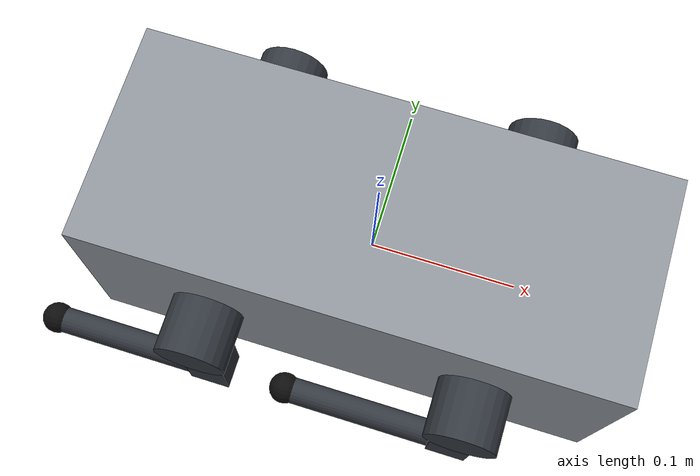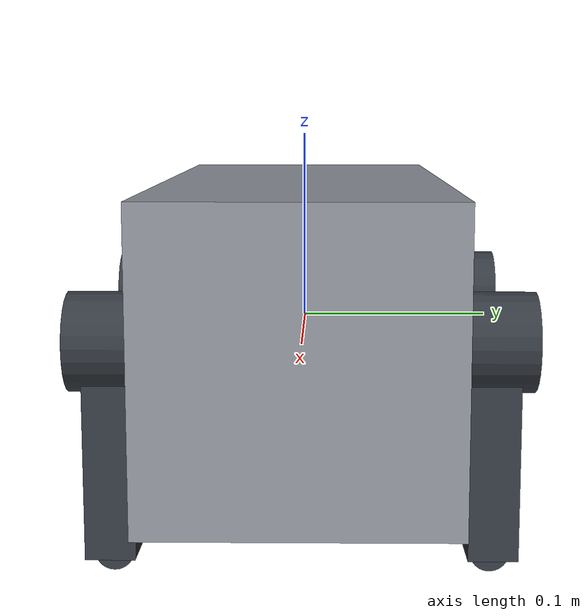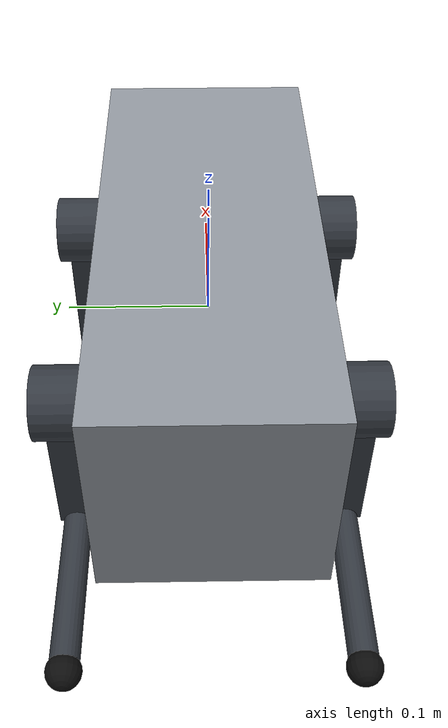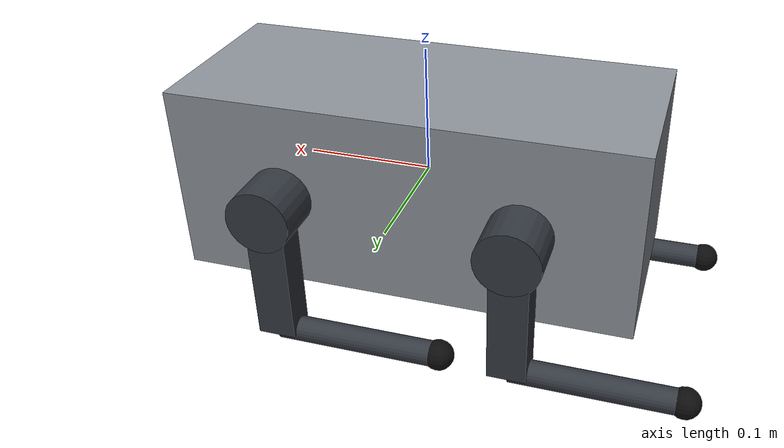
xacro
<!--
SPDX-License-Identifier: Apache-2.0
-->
<?xml version="1.0"?>
<robot name="home_guardian" xmlns:xacro="http://www.ros.org/wiki/xacro">

  <xacro:property name="deg" value="${pi / 180.0}"/>

  <xacro:property name="body_length" value="0.360"/>
  <xacro:property name="body_width" value="0.150"/>
  <xacro:property name="body_height" value="0.150"/>
  <xacro:property name="hip_x" value="0.093"/>
  <xacro:property name="hip_y" value="0.095"/>
  <xacro:property name="femur_length" value="0.108"/>
  <xacro:property name="tibia_length" value="0.130"/>

  <xacro:property name="hip_lower" value="${-45 * deg}"/>
  <xacro:property name="hip_upper" value="${100 * deg}"/>
  <xacro:property name="knee_lower" value="${30 * deg}"/>
  <xacro:property name="knee_upper" value="${150 * deg}"/>
  <!-- Placeholders until the servos are chosen. -->
  <xacro:property name="joint_effort" value="10.0"/>
  <xacro:property name="joint_velocity" value="6.0"/>

  <material name="body_grey"><color rgba="0.55 0.57 0.60 1.0"/></material>
  <material name="leg_dark"><color rgba="0.20 0.22 0.25 1.0"/></material>
  <material name="foot_black"><color rgba="0.05 0.05 0.05 1.0"/></material>

  <link name="base_link">
    <visual>
      <geometry><box size="${body_length} ${body_width} ${body_height}"/></geometry>
      <material name="body_grey"/>
    </visual>
    <collision>
      <geometry><box size="${body_length} ${body_width} ${body_height}"/></geometry>
    </collision>
  </link>

  <xacro:macro name="leg" params="prefix x y">
    <joint name="${prefix}_hip_joint" type="revolute">
      <parent link="base_link"/>
      <child link="${prefix}_femur"/>
      <origin xyz="${x} ${y} 0" rpy="0 0 0"/>
      <axis xyz="0 -1 0"/>
      <limit lower="${hip_lower}" upper="${hip_upper}" effort="${joint_effort}"
             velocity="${joint_velocity}"/>
    </joint>

    <link name="${prefix}_femur">
      <!-- Hip actuator, along the pitch axis. -->
      <visual>
        <origin xyz="0 0 0" rpy="${pi / 2} 0 0"/>
        <geometry><cylinder radius="0.025" length="0.040"/></geometry>
        <material name="leg_dark"/>
      </visual>
      <visual>
        <origin xyz="0 0 ${-femur_length / 2}" rpy="0 0 0"/>
        <geometry><box size="0.030 0.025 ${femur_length}"/></geometry>
        <material name="leg_dark"/>
      </visual>
      <collision>
        <origin xyz="0 0 ${-femur_length / 2}" rpy="0 0 0"/>
        <geometry><box size="0.030 0.025 ${femur_length}"/></geometry>
      </collision>
    </link>

    <joint name="${prefix}_knee_joint" type="revolute">
      <parent link="${prefix}_femur"/>
      <child link="${prefix}_tibia"/>
      <origin xyz="0 0 ${-femur_length}" rpy="0 ${pi} 0"/>
      <axis xyz="0 -1 0"/>
      <limit lower="${knee_lower}" upper="${knee_upper}" effort="${joint_effort}"
             velocity="${joint_velocity}"/>
    </joint>

    <link name="${prefix}_tibia">
      <visual>
        <origin xyz="0 0 ${-tibia_length / 2}" rpy="0 0 0"/>
        <geometry><cylinder radius="0.010" length="${tibia_length}"/></geometry>
        <material name="leg_dark"/>
      </visual>
      <collision>
        <origin xyz="0 0 ${-tibia_length / 2}" rpy="0 0 0"/>
        <geometry><cylinder radius="0.010" length="${tibia_length}"/></geometry>
      </collision>
    </link>

    <!-- Foot contact point at the tibia tip. -->
    <joint name="${prefix}_foot_joint" type="fixed">
      <parent link="${prefix}_tibia"/>
      <child link="${prefix}_foot"/>
      <origin xyz="0 0 ${-tibia_length}" rpy="0 0 0"/>
    </joint>

    <link name="${prefix}_foot">
      <visual>
        <geometry><sphere radius="0.012"/></geometry>
        <material name="foot_black"/>
      </visual>
    </link>
  </xacro:macro>

  <xacro:leg prefix="fl" x="${hip_x}" y="${hip_y}"/>
  <xacro:leg prefix="fr" x="${hip_x}" y="${-hip_y}"/>
  <xacro:leg prefix="rl" x="${-hip_x}" y="${hip_y}"/>
  <xacro:leg prefix="rr" x="${-hip_x}" y="${-hip_y}"/>

</robot>
